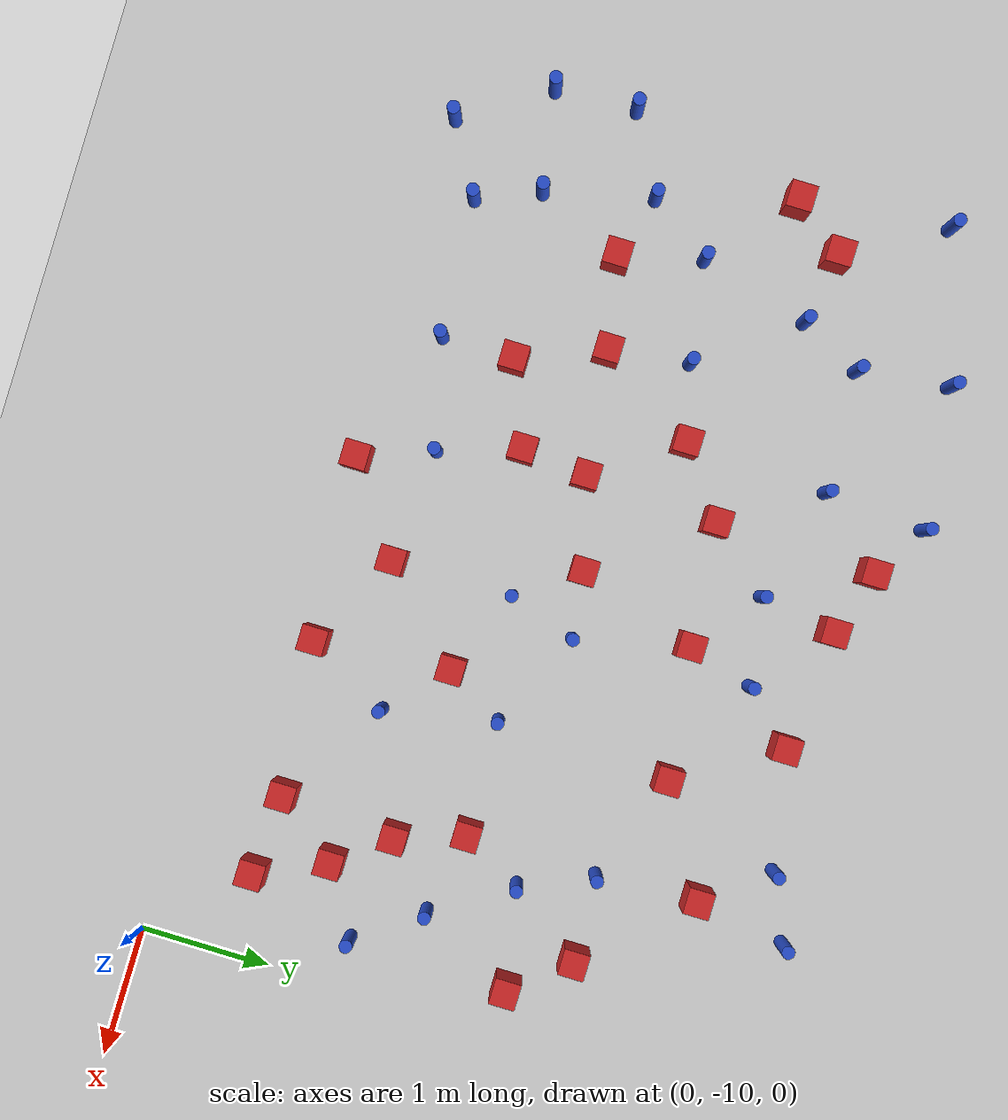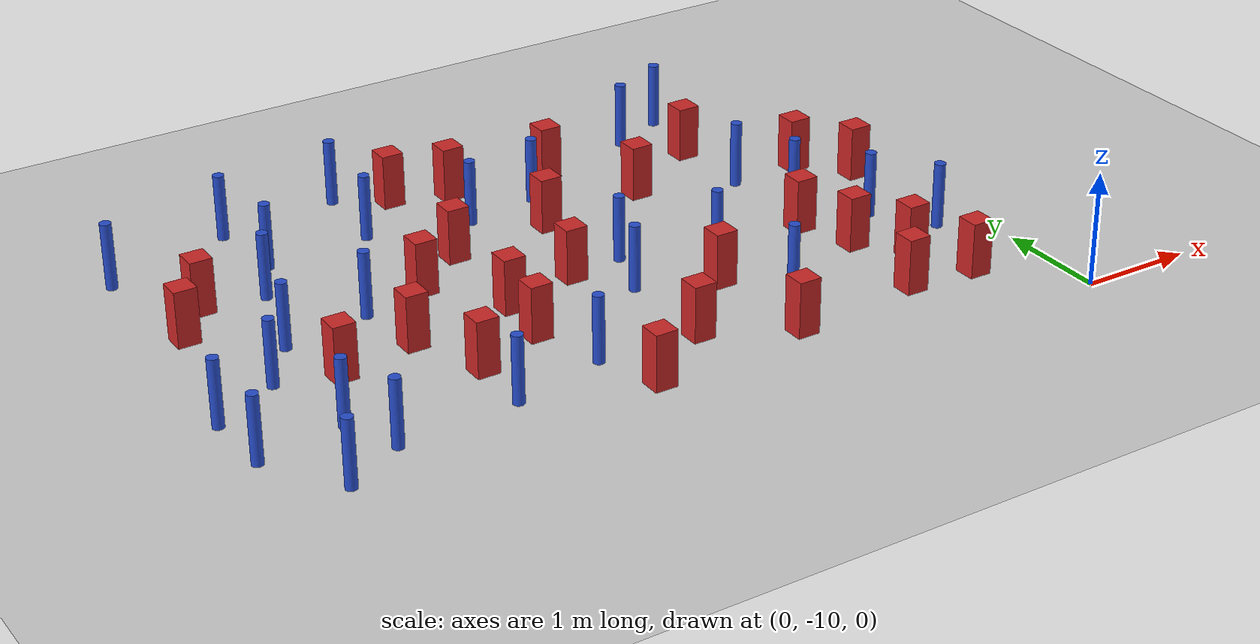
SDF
<sdf version="1.6">
 <world name="default">
  <model name="ground_plane">
   <static>1</static>
   <link name="link">
    <collision name="collision">
     <geometry><plane><normal>0 0 1</normal><size>100 100</size></plane></geometry>
     <surface><friction><ode><mu>100</mu><mu2>50</mu2></ode></friction></surface>
    </collision>
    <visual name="visual">
     <cast_shadows>0</cast_shadows>
     <geometry><plane><normal>0 0 1</normal><size>100 100</size></plane></geometry>
     <material>
      <ambient>1.0 1.0 1.0 1.0</ambient>
      <diffuse>0.8 0.8 0.8 1.0</diffuse>
      <specular>0.01 0.01 0.01 1.000000</specular>
     </material>
    </visual>
   </link>
  </model>
  <model name="square_post_obstacle3">
   <static>true</static>
   <pose>-4.2993784484 -8.27690357602 -6.11067671241e-07 -5.50515727128e-06 -8.79689657224e-07 2.37013304536e-05</pose>
   <link name="link">
    <pose>0 0 0.25 0 -0 0</pose>
    <inertial>
     <mass>100</mass>
     <inertia>
      <ixx>0.166667</ixx>
      <ixy>0</ixy>
      <ixz>0</ixz>
      <iyy>0.166667</iyy>
      <iyz>0</iyz>
      <izz>0.166667</izz>
     </inertia>
    </inertial>
    <collision name="collision"><geometry><box><size>.2 .2 .5</size></box></geometry></collision>
    <visual name="visual">
     <geometry><box><size>.2 .2 .5</size></box></geometry>
     <material>
      <script><name>Gazebo/Red</name><uri>file://media/materials/scripts/gazebo.material</uri></script>
     </material>
    </visual>
   </link>
  </model>
  <model name="square_post_obstacle7">
   <static>true</static>
   <pose>-3.24468510461 -6.64696252603 -6.11067671241e-07 -5.50515727128e-06 -8.79689657224e-07 2.37013304536e-05</pose>
   <link name="link">
    <pose>0 0 0.25 0 -0 0</pose>
    <inertial>
     <mass>100</mass>
     <inertia>
      <ixx>0.166667</ixx>
      <ixy>0</ixy>
      <ixz>0</ixz>
      <iyy>0.166667</iyy>
      <iyz>0</iyz>
      <izz>0.166667</izz>
     </inertia>
    </inertial>
    <collision name="collision"><geometry><box><size>.2 .2 .5</size></box></geometry></collision>
    <visual name="visual">
     <geometry><box><size>.2 .2 .5</size></box></geometry>
     <material>
      <script><name>Gazebo/Red</name><uri>file://media/materials/scripts/gazebo.material</uri></script>
     </material>
    </visual>
   </link>
  </model>
  <model name="square_post_obstacle13">
   <static>true</static>
   <pose>-1.29914973282 -9.2488651199 -6.11067671241e-07 -5.50515727128e-06 -8.79689657224e-07 2.37013304536e-05</pose>
   <link name="link">
    <pose>0 0 0.25 0 -0 0</pose>
    <inertial>
     <mass>100</mass>
     <inertia>
      <ixx>0.166667</ixx>
      <ixy>0</ixy>
      <ixz>0</ixz>
      <iyy>0.166667</iyy>
      <iyz>0</iyz>
      <izz>0.166667</izz>
     </inertia>
    </inertial>
    <collision name="collision"><geometry><box><size>.2 .2 .5</size></box></geometry></collision>
    <visual name="visual">
     <geometry><box><size>.2 .2 .5</size></box></geometry>
     <material>
      <script><name>Gazebo/Red</name><uri>file://media/materials/scripts/gazebo.material</uri></script>
     </material>
    </visual>
   </link>
  </model>
  <model name="square_post_obstacle16">
   <static>true</static>
   <pose>-5.19287735996 -7.88013842331 -6.11067671241e-07 -5.50515727128e-06 -8.79689657224e-07 2.37013304536e-05</pose>
   <link name="link">
    <pose>0 0 0.25 0 -0 0</pose>
    <inertial>
     <mass>100</mass>
     <inertia>
      <ixx>0.166667</ixx>
      <ixy>0</ixy>
      <ixz>0</ixz>
      <iyy>0.166667</iyy>
      <iyz>0</iyz>
      <izz>0.166667</izz>
     </inertia>
    </inertial>
    <collision name="collision"><geometry><box><size>.2 .2 .5</size></box></geometry></collision>
    <visual name="visual">
     <geometry><box><size>.2 .2 .5</size></box></geometry>
     <material>
      <script><name>Gazebo/Red</name><uri>file://media/materials/scripts/gazebo.material</uri></script>
     </material>
    </visual>
   </link>
  </model>
  <model name="square_post_obstacle18">
   <static>true</static>
   <pose>-6.67809848744 -6.83257664463 -6.11067671241e-07 -5.50515727128e-06 -8.79689657224e-07 2.37013304536e-05</pose>
   <link name="link">
    <pose>0 0 0.25 0 -0 0</pose>
    <inertial>
     <mass>100</mass>
     <inertia>
      <ixx>0.166667</ixx>
      <ixy>0</ixy>
      <ixz>0</ixz>
      <iyy>0.166667</iyy>
      <iyz>0</iyz>
      <izz>0.166667</izz>
     </inertia>
    </inertial>
    <collision name="collision"><geometry><box><size>.2 .2 .5</size></box></geometry></collision>
    <visual name="visual">
     <geometry><box><size>.2 .2 .5</size></box></geometry>
     <material>
      <script><name>Gazebo/Red</name><uri>file://media/materials/scripts/gazebo.material</uri></script>
     </material>
    </visual>
   </link>
  </model>
  <model name="square_post_obstacle22">
   <static>true</static>
   <pose>-2.71512669858 -5.74736953656 -6.11067671241e-07 -5.50515727128e-06 -8.79689657224e-07 2.37013304536e-05</pose>
   <link name="link">
    <pose>0 0 0.25 0 -0 0</pose>
    <inertial>
     <mass>100</mass>
     <inertia>
      <ixx>0.166667</ixx>
      <ixy>0</ixy>
      <ixz>0</ixz>
      <iyy>0.166667</iyy>
      <iyz>0</iyz>
      <izz>0.166667</izz>
     </inertia>
    </inertial>
    <collision name="collision"><geometry><box><size>.2 .2 .5</size></box></geometry></collision>
    <visual name="visual">
     <geometry><box><size>.2 .2 .5</size></box></geometry>
     <material>
      <script><name>Gazebo/Red</name><uri>file://media/materials/scripts/gazebo.material</uri></script>
     </material>
    </visual>
   </link>
  </model>
  <model name="square_post_obstacle32">
   <static>true</static>
   <pose>-0.92152964072 -8.76448828151 -6.11067671241e-07 -5.50515727128e-06 -8.79689657224e-07 2.37013304536e-05</pose>
   <link name="link">
    <pose>0 0 0.25 0 -0 0</pose>
    <inertial>
     <mass>100</mass>
     <inertia>
      <ixx>0.166667</ixx>
      <ixy>0</ixy>
      <ixz>0</ixz>
      <iyy>0.166667</iyy>
      <iyz>0</iyz>
      <izz>0.166667</izz>
     </inertia>
    </inertial>
    <collision name="collision"><geometry><box><size>.2 .2 .5</size></box></geometry></collision>
    <visual name="visual">
     <geometry><box><size>.2 .2 .5</size></box></geometry>
     <material>
      <script><name>Gazebo/Red</name><uri>file://media/materials/scripts/gazebo.material</uri></script>
     </material>
    </visual>
   </link>
  </model>
  <model name="square_post_obstacle34">
   <static>true</static>
   <pose>-4.92881140648 -8.53332998616 -6.11067671241e-07 -5.50515727128e-06 -8.79689657224e-07 2.37013304536e-05</pose>
   <link name="link">
    <pose>0 0 0.25 0 -0 0</pose>
    <inertial>
     <mass>100</mass>
     <inertia>
      <ixx>0.166667</ixx>
      <ixy>0</ixy>
      <ixz>0</ixz>
      <iyy>0.166667</iyy>
      <iyz>0</iyz>
      <izz>0.166667</izz>
     </inertia>
    </inertial>
    <collision name="collision"><geometry><box><size>.2 .2 .5</size></box></geometry></collision>
    <visual name="visual">
     <geometry><box><size>.2 .2 .5</size></box></geometry>
     <material>
      <script><name>Gazebo/Red</name><uri>file://media/materials/scripts/gazebo.material</uri></script>
     </material>
    </visual>
   </link>
  </model>
  <model name="square_post_obstacle51">
   <static>true</static>
   <pose>-4.19252146235 -6.72760498973 -6.11067671241e-07 -5.50515727128e-06 -8.79689657224e-07 2.37013304536e-05</pose>
   <link name="link">
    <pose>0 0 0.25 0 -0 0</pose>
    <inertial>
     <mass>100</mass>
     <inertia>
      <ixx>0.166667</ixx>
      <ixy>0</ixy>
      <ixz>0</ixz>
      <iyy>0.166667</iyy>
      <iyz>0</iyz>
      <izz>0.166667</izz>
     </inertia>
    </inertial>
    <collision name="collision"><geometry><box><size>.2 .2 .5</size></box></geometry></collision>
    <visual name="visual">
     <geometry><box><size>.2 .2 .5</size></box></geometry>
     <material>
      <script><name>Gazebo/Red</name><uri>file://media/materials/scripts/gazebo.material</uri></script>
     </material>
    </visual>
   </link>
  </model>
  <model name="square_post_obstacle53">
   <static>true</static>
   <pose>-3.21638851513 -8.97245397191 -6.11067671241e-07 -5.50515727128e-06 -8.79689657224e-07 2.37013304536e-05</pose>
   <link name="link">
    <pose>0 0 0.25 0 -0 0</pose>
    <inertial>
     <mass>100</mass>
     <inertia>
      <ixx>0.166667</ixx>
      <ixy>0</ixy>
      <ixz>0</ixz>
      <iyy>0.166667</iyy>
      <iyz>0</iyz>
      <izz>0.166667</izz>
     </inertia>
    </inertial>
    <collision name="collision"><geometry><box><size>.2 .2 .5</size></box></geometry></collision>
    <visual name="visual">
     <geometry><box><size>.2 .2 .5</size></box></geometry>
     <material>
      <script><name>Gazebo/Red</name><uri>file://media/materials/scripts/gazebo.material</uri></script>
     </material>
    </visual>
   </link>
  </model>
  <model name="square_post_obstacle70">
   <static>true</static>
   <pose>-3.55244868384 -7.57537905655 -6.11067671241e-07 -5.50515727128e-06 -8.79689657224e-07 2.37013304536e-05</pose>
   <link name="link">
    <pose>0 0 0.25 0 -0 0</pose>
    <inertial>
     <mass>100</mass>
     <inertia>
      <ixx>0.166667</ixx>
      <ixy>0</ixy>
      <ixz>0</ixz>
      <iyy>0.166667</iyy>
      <iyz>0</iyz>
      <izz>0.166667</izz>
     </inertia>
    </inertial>
    <collision name="collision"><geometry><box><size>.2 .2 .5</size></box></geometry></collision>
    <visual name="visual">
     <geometry><box><size>.2 .2 .5</size></box></geometry>
     <material>
      <script><name>Gazebo/Red</name><uri>file://media/materials/scripts/gazebo.material</uri></script>
     </material>
    </visual>
   </link>
  </model>
  <model name="square_post_obstacle71">
   <static>true</static>
   <pose>-0.382492057168 -7.23300606079 -6.11067671241e-07 -5.50515727128e-06 -8.79689657224e-07 2.37013304536e-05</pose>
   <link name="link">
    <pose>0 0 0.25 0 -0 0</pose>
    <inertial>
     <mass>100</mass>
     <inertia>
      <ixx>0.166667</ixx>
      <ixy>0</ixy>
      <ixz>0</ixz>
      <iyy>0.166667</iyy>
      <iyz>0</iyz>
      <izz>0.166667</izz>
     </inertia>
    </inertial>
    <collision name="collision"><geometry><box><size>.2 .2 .5</size></box></geometry></collision>
    <visual name="visual">
     <geometry><box><size>.2 .2 .5</size></box></geometry>
     <material>
      <script><name>Gazebo/Red</name><uri>file://media/materials/scripts/gazebo.material</uri></script>
     </material>
    </visual>
   </link>
  </model>
  <model name="pole_obstacle78">
   <static>true</static>
   <pose>-4.64784451784 -5.99882765532 -9.47619616065e-06 5.49618799737e-07 2.36310414037e-07 -1.55090534814e-07</pose>
   <link name="link">
    <pose>0 0 0.3 0 -0 0</pose>
    <inertial>
     <mass>1</mass>
     <inertia><ixx>0.145833</ixx><ixy>0</ixy><ixz>0</ixz><iyy>0.145833</iyy><iyz>0</iyz><izz>0.125</izz></inertia>
    </inertial>
    <collision name="collision">
     <geometry><cylinder><radius>0.05</radius><length>.6</length></cylinder></geometry>
    </collision>
    <visual name="visual">
     <geometry><cylinder><radius>0.05</radius><length>.6</length></cylinder></geometry>
     <material>
      <script><name>Gazebo/Blue</name><uri>file://media/materials/scripts/gazebo.material</uri></script>
     </material>
    </visual>
   </link>
  </model>
  <model name="pole_obstacle81">
   <static>true</static>
   <pose>-5.5900091237 -6.04336140854 -9.47619616065e-06 5.49618799737e-07 2.36310414037e-07 -1.55090534814e-07</pose>
   <link name="link">
    <pose>0 0 0.3 0 -0 0</pose>
    <inertial>
     <mass>1</mass>
     <inertia><ixx>0.145833</ixx><ixy>0</ixy><ixz>0</ixz><iyy>0.145833</iyy><iyz>0</iyz><izz>0.125</izz></inertia>
    </inertial>
    <collision name="collision">
     <geometry><cylinder><radius>0.05</radius><length>.6</length></cylinder></geometry>
    </collision>
    <visual name="visual">
     <geometry><cylinder><radius>0.05</radius><length>.6</length></cylinder></geometry>
     <material>
      <script><name>Gazebo/Blue</name><uri>file://media/materials/scripts/gazebo.material</uri></script>
     </material>
    </visual>
   </link>
  </model>
  <model name="pole_obstacle82">
   <static>true</static>
   <pose>-1.29523409269 -5.32720710379 -9.47619616065e-06 5.49618799737e-07 2.36310414061e-07 -1.550905348e-07</pose>
   <link name="link">
    <pose>0 0 0.3 0 -0 0</pose>
    <inertial>
     <mass>1</mass>
     <inertia><ixx>0.145833</ixx><ixy>0</ixy><ixz>0</ixz><iyy>0.145833</iyy><iyz>0</iyz><izz>0.125</izz></inertia>
    </inertial>
    <collision name="collision">
     <geometry><cylinder><radius>0.05</radius><length>.6</length></cylinder></geometry>
    </collision>
    <visual name="visual">
     <geometry><cylinder><radius>0.05</radius><length>.6</length></cylinder></geometry>
     <material>
      <script><name>Gazebo/Blue</name><uri>file://media/materials/scripts/gazebo.material</uri></script>
     </material>
    </visual>
   </link>
  </model>
  <model name="pole_obstacle87">
   <static>true</static>
   <pose>-6.0041068805 -9.17380853155 -9.47619616065e-06 5.49618799737e-07 2.36310414065e-07 -1.55090534796e-07</pose>
   <link name="link">
    <pose>0 0 0.3 0 -0 0</pose>
    <inertial>
     <mass>1</mass>
     <inertia><ixx>0.145833</ixx><ixy>0</ixy><ixz>0</ixz><iyy>0.145833</iyy><iyz>0</iyz><izz>0.125</izz></inertia>
    </inertial>
    <collision name="collision">
     <geometry><cylinder><radius>0.05</radius><length>.6</length></cylinder></geometry>
    </collision>
    <visual name="visual">
     <geometry><cylinder><radius>0.05</radius><length>.6</length></cylinder></geometry>
     <material>
      <script><name>Gazebo/Blue</name><uri>file://media/materials/scripts/gazebo.material</uri></script>
     </material>
    </visual>
   </link>
  </model>
  <model name="pole_obstacle88">
   <static>true</static>
   <pose>-1.38753026893 -6.82623184095 -9.47619616065e-06 5.49618799737e-07 2.36310414061e-07 -1.550905348e-07</pose>
   <link name="link">
    <pose>0 0 0.3 0 -0 0</pose>
    <inertial>
     <mass>1</mass>
     <inertia><ixx>0.145833</ixx><ixy>0</ixy><ixz>0</ixz><iyy>0.145833</iyy><iyz>0</iyz><izz>0.125</izz></inertia>
    </inertial>
    <collision name="collision">
     <geometry><cylinder><radius>0.05</radius><length>.6</length></cylinder></geometry>
    </collision>
    <visual name="visual">
     <geometry><cylinder><radius>0.05</radius><length>.6</length></cylinder></geometry>
     <material>
      <script><name>Gazebo/Blue</name><uri>file://media/materials/scripts/gazebo.material</uri></script>
     </material>
    </visual>
   </link>
  </model>
  <model name="pole_obstacle101">
   <static>true</static>
   <pose>-6.06275814442 -7.37806334808 -9.47619616065e-06 5.49618799737e-07 2.36310414037e-07 -1.55090534814e-07</pose>
   <link name="link">
    <pose>0 0 0.3 0 -0 0</pose>
    <inertial>
     <mass>1</mass>
     <inertia><ixx>0.145833</ixx><ixy>0</ixy><ixz>0</ixz><iyy>0.145833</iyy><iyz>0</iyz><izz>0.125</izz></inertia>
    </inertial>
    <collision name="collision">
     <geometry><cylinder><radius>0.05</radius><length>.6</length></cylinder></geometry>
    </collision>
    <visual name="visual">
     <geometry><cylinder><radius>0.05</radius><length>.6</length></cylinder></geometry>
     <material>
      <script><name>Gazebo/Blue</name><uri>file://media/materials/scripts/gazebo.material</uri></script>
     </material>
    </visual>
   </link>
  </model>
  <model name="square_post_obstacle93">
   <static>true</static>
   <pose>-2.5617805429 -8.31309584344 -6.11067671241e-07 -5.50515727128e-06 -8.79689657224e-07 2.37013304536e-05</pose>
   <link name="link">
    <pose>0 0 0.25 0 -0 0</pose>
    <inertial>
     <mass>100</mass>
     <inertia>
      <ixx>0.166667</ixx>
      <ixy>0</ixy>
      <ixz>0</ixz>
      <iyy>0.166667</iyy>
      <iyz>0</iyz>
      <izz>0.166667</izz>
     </inertia>
    </inertial>
    <collision name="collision"><geometry><box><size>.2 .2 .5</size></box></geometry></collision>
    <visual name="visual">
     <geometry><box><size>.2 .2 .5</size></box></geometry>
     <material>
      <script><name>Gazebo/Red</name><uri>file://media/materials/scripts/gazebo.material</uri></script>
     </material>
    </visual>
   </link>
  </model>
  <model name="square_post_obstacle95">
   <static>true</static>
   <pose>-1.41316962822 -7.84274470521 -6.11067671241e-07 -5.50515727128e-06 -8.79689657224e-07 2.37013304536e-05</pose>
   <link name="link">
    <pose>0 0 0.25 0 -0 0</pose>
    <inertial>
     <mass>100</mass>
     <inertia>
      <ixx>0.166667</ixx>
      <ixy>0</ixy>
      <ixz>0</ixz>
      <iyy>0.166667</iyy>
      <iyz>0</iyz>
      <izz>0.166667</izz>
     </inertia>
    </inertial>
    <collision name="collision"><geometry><box><size>.2 .2 .5</size></box></geometry></collision>
    <visual name="visual">
     <geometry><box><size>.2 .2 .5</size></box></geometry>
     <material>
      <script><name>Gazebo/Red</name><uri>file://media/materials/scripts/gazebo.material</uri></script>
     </material>
    </visual>
   </link>
  </model>
  <model name="square_post_obstacle97">
   <static>true</static>
   <pose>-1.43846110884 -6.04882433006 -6.11067671241e-07 -5.50515727128e-06 -8.79689657224e-07 2.37013304536e-05</pose>
   <link name="link">
    <pose>0 0 0.25 0 -0 0</pose>
    <inertial>
     <mass>100</mass>
     <inertia>
      <ixx>0.166667</ixx>
      <ixy>0</ixy>
      <ixz>0</ixz>
      <iyy>0.166667</iyy>
      <iyz>0</iyz>
      <izz>0.166667</izz>
     </inertia>
    </inertial>
    <collision name="collision"><geometry><box><size>.2 .2 .5</size></box></geometry></collision>
    <visual name="visual">
     <geometry><box><size>.2 .2 .5</size></box></geometry>
     <material>
      <script><name>Gazebo/Red</name><uri>file://media/materials/scripts/gazebo.material</uri></script>
     </material>
    </visual>
   </link>
  </model>
  <model name="pole_obstacle138">
   <static>true</static>
   <pose>-2.29040257265 -7.86482057623 -9.47619616065e-06 5.49618799738e-07 2.3631041406e-07 -1.55090534801e-07</pose>
   <link name="link">
    <pose>0 0 0.3 0 -0 0</pose>
    <inertial>
     <mass>1</mass>
     <inertia><ixx>0.145833</ixx><ixy>0</ixy><ixz>0</ixz><iyy>0.145833</iyy><iyz>0</iyz><izz>0.125</izz></inertia>
    </inertial>
    <collision name="collision">
     <geometry><cylinder><radius>0.05</radius><length>.6</length></cylinder></geometry>
    </collision>
    <visual name="visual">
     <geometry><cylinder><radius>0.05</radius><length>.6</length></cylinder></geometry>
     <material>
      <script><name>Gazebo/Blue</name><uri>file://media/materials/scripts/gazebo.material</uri></script>
     </material>
    </visual>
   </link>
  </model>
  <model name="square_post_obstacle119">
   <static>true</static>
   <pose>-4.24764135924 -7.76460627771 -6.11067671241e-07 -5.50515727128e-06 -8.79689657224e-07 2.37013304536e-05</pose>
   <link name="link">
    <pose>0 0 0.25 0 -0 0</pose>
    <inertial>
     <mass>100</mass>
     <inertia>
      <ixx>0.166667</ixx>
      <ixy>0</ixy>
      <ixz>0</ixz>
      <iyy>0.166667</iyy>
      <iyz>0</iyz>
      <izz>0.166667</izz>
     </inertia>
    </inertial>
    <collision name="collision"><geometry><box><size>.2 .2 .5</size></box></geometry></collision>
    <visual name="visual">
     <geometry><box><size>.2 .2 .5</size></box></geometry>
     <material>
      <script><name>Gazebo/Red</name><uri>file://media/materials/scripts/gazebo.material</uri></script>
     </material>
    </visual>
   </link>
  </model>
  <model name="square_post_obstacle125">
   <static>true</static>
   <pose>-3.65321984455 -5.65207707395 -6.11067671241e-07 -5.50515727128e-06 -8.79689657224e-07 2.37013304536e-05</pose>
   <link name="link">
    <pose>0 0 0.25 0 -0 0</pose>
    <inertial>
     <mass>100</mass>
     <inertia>
      <ixx>0.166667</ixx>
      <ixy>0</ixy>
      <ixz>0</ixz>
      <iyy>0.166667</iyy>
      <iyz>0</iyz>
      <izz>0.166667</izz>
     </inertia>
    </inertial>
    <collision name="collision"><geometry><box><size>.2 .2 .5</size></box></geometry></collision>
    <visual name="visual">
     <geometry><box><size>.2 .2 .5</size></box></geometry>
     <material>
      <script><name>Gazebo/Red</name><uri>file://media/materials/scripts/gazebo.material</uri></script>
     </material>
    </visual>
   </link>
  </model>
  <model name="square_post_obstacle126">
   <static>true</static>
   <pose>-2.24075876193 -6.51996628651 -6.11067671241e-07 -5.50515727128e-06 -8.79689657224e-07 2.37013304536e-05</pose>
   <link name="link">
    <pose>0 0 0.25 0 -0 0</pose>
    <inertial>
     <mass>100</mass>
     <inertia>
      <ixx>0.166667</ixx>
      <ixy>0</ixy>
      <ixz>0</ixz>
      <iyy>0.166667</iyy>
      <iyz>0</iyz>
      <izz>0.166667</izz>
     </inertia>
    </inertial>
    <collision name="collision"><geometry><box><size>.2 .2 .5</size></box></geometry></collision>
    <visual name="visual">
     <geometry><box><size>.2 .2 .5</size></box></geometry>
     <material>
      <script><name>Gazebo/Red</name><uri>file://media/materials/scripts/gazebo.material</uri></script>
     </material>
    </visual>
   </link>
  </model>
  <model name="pole_obstacle145">
   <static>true</static>
   <pose>-6.97160524432 -8.8252260519 -9.47619616065e-06 5.49618799737e-07 2.36310414065e-07 -1.55090534796e-07</pose>
   <link name="link">
    <pose>0 0 0.3 0 -0 0</pose>
    <inertial>
     <mass>1</mass>
     <inertia><ixx>0.145833</ixx><ixy>0</ixy><ixz>0</ixz><iyy>0.145833</iyy><iyz>0</iyz><izz>0.125</izz></inertia>
    </inertial>
    <collision name="collision">
     <geometry><cylinder><radius>0.05</radius><length>.6</length></cylinder></geometry>
    </collision>
    <visual name="visual">
     <geometry><cylinder><radius>0.05</radius><length>.6</length></cylinder></geometry>
     <material>
      <script><name>Gazebo/Blue</name><uri>file://media/materials/scripts/gazebo.material</uri></script>
     </material>
    </visual>
   </link>
  </model>
  <model name="pole_obstacle146">
   <static>true</static>
   <pose>-6.54401564375 -9.4851067022 -9.47619616065e-06 5.49618799737e-07 2.36310414065e-07 -1.55090534796e-07</pose>
   <link name="link">
    <pose>0 0 0.3 0 -0 0</pose>
    <inertial>
     <mass>1</mass>
     <inertia><ixx>0.145833</ixx><ixy>0</ixy><ixz>0</ixz><iyy>0.145833</iyy><iyz>0</iyz><izz>0.125</izz></inertia>
    </inertial>
    <collision name="collision">
     <geometry><cylinder><radius>0.05</radius><length>.6</length></cylinder></geometry>
    </collision>
    <visual name="visual">
     <geometry><cylinder><radius>0.05</radius><length>.6</length></cylinder></geometry>
     <material>
      <script><name>Gazebo/Blue</name><uri>file://media/materials/scripts/gazebo.material</uri></script>
     </material>
    </visual>
   </link>
  </model>
  <model name="pole_obstacle148">
   <static>true</static>
   <pose>-0.762016217732 -7.96892969851 -9.47619616065e-06 5.49618799737e-07 2.36310414051e-07 -1.55090534805e-07</pose>
   <link name="link">
    <pose>0 0 0.3 0 -0 0</pose>
    <inertial>
     <mass>1</mass>
     <inertia><ixx>0.145833</ixx><ixy>0</ixy><ixz>0</ixz><iyy>0.145833</iyy><iyz>0</iyz><izz>0.125</izz></inertia>
    </inertial>
    <collision name="collision">
     <geometry><cylinder><radius>0.05</radius><length>.6</length></cylinder></geometry>
    </collision>
    <visual name="visual">
     <geometry><cylinder><radius>0.05</radius><length>.6</length></cylinder></geometry>
     <material>
      <script><name>Gazebo/Blue</name><uri>file://media/materials/scripts/gazebo.material</uri></script>
     </material>
    </visual>
   </link>
  </model>
  <model name="pole_obstacle154">
   <static>true</static>
   <pose>-6.20287372401 -8.69264917543 -9.47619616065e-06 5.49618799737e-07 2.36310414065e-07 -1.55090534796e-07</pose>
   <link name="link">
    <pose>0 0 0.3 0 -0 0</pose>
    <inertial>
     <mass>1</mass>
     <inertia><ixx>0.145833</ixx><ixy>0</ixy><ixz>0</ixz><iyy>0.145833</iyy><iyz>0</iyz><izz>0.125</izz></inertia>
    </inertial>
    <collision name="collision">
     <geometry><cylinder><radius>0.05</radius><length>.6</length></cylinder></geometry>
    </collision>
    <visual name="visual">
     <geometry><cylinder><radius>0.05</radius><length>.6</length></cylinder></geometry>
     <material>
      <script><name>Gazebo/Blue</name><uri>file://media/materials/scripts/gazebo.material</uri></script>
     </material>
    </visual>
   </link>
  </model>
  <model name="square_post_obstacle147">
   <static>true</static>
   <pose>-1.23361130519 -8.36236702801 -6.11067671241e-07 -5.50515727128e-06 -8.79689657224e-07 2.37013304536e-05</pose>
   <link name="link">
    <pose>0 0 0.25 0 -0 0</pose>
    <inertial>
     <mass>100</mass>
     <inertia>
      <ixx>0.166667</ixx>
      <ixy>0</ixy>
      <ixz>0</ixz>
      <iyy>0.166667</iyy>
      <iyz>0</iyz>
      <izz>0.166667</izz>
     </inertia>
    </inertial>
    <collision name="collision"><geometry><box><size>.2 .2 .5</size></box></geometry></collision>
    <visual name="visual">
     <geometry><box><size>.2 .2 .5</size></box></geometry>
     <material>
      <script><name>Gazebo/Red</name><uri>file://media/materials/scripts/gazebo.material</uri></script>
     </material>
    </visual>
   </link>
  </model>
  <model name="square_post_obstacle149">
   <static>true</static>
   <pose>-2.47998786743 -9.35790751502 -6.11067671241e-07 -5.50515727128e-06 -8.79689657224e-07 2.37013304536e-05</pose>
   <link name="link">
    <pose>0 0 0.25 0 -0 0</pose>
    <inertial>
     <mass>100</mass>
     <inertia>
      <ixx>0.166667</ixx>
      <ixy>0</ixy>
      <ixz>0</ixz>
      <iyy>0.166667</iyy>
      <iyz>0</iyz>
      <izz>0.166667</izz>
     </inertia>
    </inertial>
    <collision name="collision"><geometry><box><size>.2 .2 .5</size></box></geometry></collision>
    <visual name="visual">
     <geometry><box><size>.2 .2 .5</size></box></geometry>
     <material>
      <script><name>Gazebo/Red</name><uri>file://media/materials/scripts/gazebo.material</uri></script>
     </material>
    </visual>
   </link>
  </model>
  <model name="pole_obstacle157">
   <static>true</static>
   <pose>-5.68050049857 -5.33184604939 -9.47619616065e-06 5.49618799737e-07 2.36310414037e-07 -1.55090534814e-07</pose>
   <link name="link">
    <pose>0 0 0.3 0 -0 0</pose>
    <inertial>
     <mass>1</mass>
     <inertia><ixx>0.145833</ixx><ixy>0</ixy><ixz>0</ixz><iyy>0.145833</iyy><iyz>0</iyz><izz>0.125</izz></inertia>
    </inertial>
    <collision name="collision">
     <geometry><cylinder><radius>0.05</radius><length>.6</length></cylinder></geometry>
    </collision>
    <visual name="visual">
     <geometry><cylinder><radius>0.05</radius><length>.6</length></cylinder></geometry>
     <material>
      <script><name>Gazebo/Blue</name><uri>file://media/materials/scripts/gazebo.material</uri></script>
     </material>
    </visual>
   </link>
  </model>
  <model name="pole_obstacle174">
   <static>true</static>
   <pose>-1.14578655558 -7.37507812843 -9.47619616065e-06 5.49618799737e-07 2.36310414061e-07 -1.550905348e-07</pose>
   <link name="link">
    <pose>0 0 0.3 0 -0 0</pose>
    <inertial>
     <mass>1</mass>
     <inertia><ixx>0.145833</ixx><ixy>0</ixy><ixz>0</ixz><iyy>0.145833</iyy><iyz>0</iyz><izz>0.125</izz></inertia>
    </inertial>
    <collision name="collision">
     <geometry><cylinder><radius>0.05</radius><length>.6</length></cylinder></geometry>
    </collision>
    <visual name="visual">
     <geometry><cylinder><radius>0.05</radius><length>.6</length></cylinder></geometry>
     <material>
      <script><name>Gazebo/Blue</name><uri>file://media/materials/scripts/gazebo.material</uri></script>
     </material>
    </visual>
   </link>
  </model>
  <model name="pole_obstacle176">
   <static>true</static>
   <pose>-4.10031177962 -8.89849861391 -9.47619616065e-06 5.49618799737e-07 2.36310414065e-07 -1.55090534796e-07</pose>
   <link name="link">
    <pose>0 0 0.3 0 -0 0</pose>
    <inertial>
     <mass>1</mass>
     <inertia><ixx>0.145833</ixx><ixy>0</ixy><ixz>0</ixz><iyy>0.145833</iyy><iyz>0</iyz><izz>0.125</izz></inertia>
    </inertial>
    <collision name="collision">
     <geometry><cylinder><radius>0.05</radius><length>.6</length></cylinder></geometry>
    </collision>
    <visual name="visual">
     <geometry><cylinder><radius>0.05</radius><length>.6</length></cylinder></geometry>
     <material>
      <script><name>Gazebo/Blue</name><uri>file://media/materials/scripts/gazebo.material</uri></script>
     </material>
    </visual>
   </link>
  </model>
  <model name="pole_obstacle178">
   <static>true</static>
   <pose>-3.08410705249 -6.1253499876 -9.47619616065e-06 5.49618799738e-07 2.3631041406e-07 -1.55090534801e-07</pose>
   <link name="link">
    <pose>0 0 0.3 0 -0 0</pose>
    <inertial>
     <mass>1</mass>
     <inertia><ixx>0.145833</ixx><ixy>0</ixy><ixz>0</ixz><iyy>0.145833</iyy><iyz>0</iyz><izz>0.125</izz></inertia>
    </inertial>
    <collision name="collision">
     <geometry><cylinder><radius>0.05</radius><length>.6</length></cylinder></geometry>
    </collision>
    <visual name="visual">
     <geometry><cylinder><radius>0.05</radius><length>.6</length></cylinder></geometry>
     <material>
      <script><name>Gazebo/Blue</name><uri>file://media/materials/scripts/gazebo.material</uri></script>
     </material>
    </visual>
   </link>
  </model>
  <model name="pole_obstacle185">
   <static>true</static>
   <pose>-2.12020150941 -8.73091190655 -9.4761961606e-06 5.49618799729e-07 2.36310414e-07 -1.55090534824e-07</pose>
   <link name="link">
    <pose>0 0 0.3 0 -0 0</pose>
    <inertial>
     <mass>1</mass>
     <inertia><ixx>0.145833</ixx><ixy>0</ixy><ixz>0</ixz><iyy>0.145833</iyy><iyz>0</iyz><izz>0.125</izz></inertia>
    </inertial>
    <collision name="collision">
     <geometry><cylinder><radius>0.05</radius><length>.6</length></cylinder></geometry>
    </collision>
    <visual name="visual">
     <geometry><cylinder><radius>0.05</radius><length>.6</length></cylinder></geometry>
     <material>
      <script><name>Gazebo/Blue</name><uri>file://media/materials/scripts/gazebo.material</uri></script>
     </material>
    </visual>
   </link>
  </model>
  <model name="square_post_obstacle177">
   <static>true</static>
   <pose>-5.88804504337 -8.01656984632 -6.11067671241e-07 -5.50515727128e-06 -8.79689657224e-07 2.37013304536e-05</pose>
   <link name="link">
    <pose>0 0 0.25 0 -0 0</pose>
    <inertial>
     <mass>100</mass>
     <inertia>
      <ixx>0.166667</ixx>
      <ixy>0</ixy>
      <ixz>0</ixz>
      <iyy>0.166667</iyy>
      <iyz>0</iyz>
      <izz>0.166667</izz>
     </inertia>
    </inertial>
    <collision name="collision"><geometry><box><size>.2 .2 .5</size></box></geometry></collision>
    <visual name="visual">
     <geometry><box><size>.2 .2 .5</size></box></geometry>
     <material>
      <script><name>Gazebo/Red</name><uri>file://media/materials/scripts/gazebo.material</uri></script>
     </material>
    </visual>
   </link>
  </model>
  <model name="square_post_obstacle180">
   <static>true</static>
   <pose>-0.678897486771 -9.2998196328 -6.11067671241e-07 -5.50515727128e-06 -8.79689657224e-07 2.37013304536e-05</pose>
   <link name="link">
    <pose>0 0 0.25 0 -0 0</pose>
    <inertial>
     <mass>100</mass>
     <inertia>
      <ixx>0.166667</ixx>
      <ixy>0</ixy>
      <ixz>0</ixz>
      <iyy>0.166667</iyy>
      <iyz>0</iyz>
      <izz>0.166667</izz>
     </inertia>
    </inertial>
    <collision name="collision"><geometry><box><size>.2 .2 .5</size></box></geometry></collision>
    <visual name="visual">
     <geometry><box><size>.2 .2 .5</size></box></geometry>
     <material>
      <script><name>Gazebo/Red</name><uri>file://media/materials/scripts/gazebo.material</uri></script>
     </material>
    </visual>
   </link>
  </model>
  <model name="square_post_obstacle183">
   <static>true</static>
   <pose>-3.88969152063 -9.45057592401 -6.11067671241e-07 -5.50515727128e-06 -8.79689657224e-07 2.37013304536e-05</pose>
   <link name="link">
    <pose>0 0 0.25 0 -0 0</pose>
    <inertial>
     <mass>100</mass>
     <inertia>
      <ixx>0.166667</ixx>
      <ixy>0</ixy>
      <ixz>0</ixz>
      <iyy>0.166667</iyy>
      <iyz>0</iyz>
      <izz>0.166667</izz>
     </inertia>
    </inertial>
    <collision name="collision"><geometry><box><size>.2 .2 .5</size></box></geometry></collision>
    <visual name="visual">
     <geometry><box><size>.2 .2 .5</size></box></geometry>
     <material>
      <script><name>Gazebo/Red</name><uri>file://media/materials/scripts/gazebo.material</uri></script>
     </material>
    </visual>
   </link>
  </model>
  <model name="square_post_obstacle185">
   <static>true</static>
   <pose>-4.16211948027 -5.49058286092 -6.11067671241e-07 -5.50515727128e-06 -8.79689657224e-07 2.37013304536e-05</pose>
   <link name="link">
    <pose>0 0 0.25 0 -0 0</pose>
    <inertial>
     <mass>100</mass>
     <inertia>
      <ixx>0.166667</ixx>
      <ixy>0</ixy>
      <ixz>0</ixz>
      <iyy>0.166667</iyy>
      <iyz>0</iyz>
      <izz>0.166667</izz>
     </inertia>
    </inertial>
    <collision name="collision"><geometry><box><size>.2 .2 .5</size></box></geometry></collision>
    <visual name="visual">
     <geometry><box><size>.2 .2 .5</size></box></geometry>
     <material>
      <script><name>Gazebo/Red</name><uri>file://media/materials/scripts/gazebo.material</uri></script>
     </material>
    </visual>
   </link>
  </model>
  <model name="square_post_obstacle190">
   <static>true</static>
   <pose>-6.37213749282 -6.43564437638 -6.11067671241e-07 -5.50515727128e-06 -8.79689657224e-07 2.37013304536e-05</pose>
   <link name="link">
    <pose>0 0 0.25 0 -0 0</pose>
    <inertial>
     <mass>100</mass>
     <inertia>
      <ixx>0.166667</ixx>
      <ixy>0</ixy>
      <ixz>0</ixz>
      <iyy>0.166667</iyy>
      <iyz>0</iyz>
      <izz>0.166667</izz>
     </inertia>
    </inertial>
    <collision name="collision"><geometry><box><size>.2 .2 .5</size></box></geometry></collision>
    <visual name="visual">
     <geometry><box><size>.2 .2 .5</size></box></geometry>
     <material>
      <script><name>Gazebo/Red</name><uri>file://media/materials/scripts/gazebo.material</uri></script>
     </material>
    </visual>
   </link>
  </model>
  <model name="pole_obstacle198">
   <static>true</static>
   <pose>-6.99816823579 -8.19056998263 -9.47619616065e-06 5.49618799737e-07 2.36310414065e-07 -1.55090534796e-07</pose>
   <link name="link">
    <pose>0 0 0.3 0 -0 0</pose>
    <inertial>
     <mass>1</mass>
     <inertia><ixx>0.145833</ixx><ixy>0</ixy><ixz>0</ixz><iyy>0.145833</iyy><iyz>0</iyz><izz>0.125</izz></inertia>
    </inertial>
    <collision name="collision">
     <geometry><cylinder><radius>0.05</radius><length>.6</length></cylinder></geometry>
    </collision>
    <visual name="visual">
     <geometry><cylinder><radius>0.05</radius><length>.6</length></cylinder></geometry>
     <material>
      <script><name>Gazebo/Blue</name><uri>file://media/materials/scripts/gazebo.material</uri></script>
     </material>
    </visual>
   </link>
  </model>
  <model name="square_post_obstacle191">
   <static>true</static>
   <pose>-4.70278569751 -7.11437173184 -6.11067671241e-07 -5.50515727128e-06 -8.79689657224e-07 2.37013304536e-05</pose>
   <link name="link">
    <pose>0 0 0.25 0 -0 0</pose>
    <inertial>
     <mass>100</mass>
     <inertia>
      <ixx>0.166667</ixx>
      <ixy>0</ixy>
      <ixz>0</ixz>
      <iyy>0.166667</iyy>
      <iyz>0</iyz>
      <izz>0.166667</izz>
     </inertia>
    </inertial>
    <collision name="collision"><geometry><box><size>.2 .2 .5</size></box></geometry></collision>
    <visual name="visual">
     <geometry><box><size>.2 .2 .5</size></box></geometry>
     <material>
      <script><name>Gazebo/Red</name><uri>file://media/materials/scripts/gazebo.material</uri></script>
     </material>
    </visual>
   </link>
  </model>
  <model name="pole_obstacle200">
   <static>true</static>
   <pose>-3.75728510052 -6.23392380988 -9.4761961606e-06 5.49618799729e-07 2.36310414006e-07 -1.55090534822e-07</pose>
   <link name="link">
    <pose>0 0 0.3 0 -0 0</pose>
    <inertial>
     <mass>1</mass>
     <inertia><ixx>0.145833</ixx><ixy>0</ixy><ixz>0</ixz><iyy>0.145833</iyy><iyz>0</iyz><izz>0.125</izz></inertia>
    </inertial>
    <collision name="collision">
     <geometry><cylinder><radius>0.05</radius><length>.6</length></cylinder></geometry>
    </collision>
    <visual name="visual">
     <geometry><cylinder><radius>0.05</radius><length>.6</length></cylinder></geometry>
     <material>
      <script><name>Gazebo/Blue</name><uri>file://media/materials/scripts/gazebo.material</uri></script>
     </material>
    </visual>
   </link>
  </model>
  <model name="square_post_obstacle195">
   <static>true</static>
   <pose>-0.737062228354 -6.80600050659 -6.11067671241e-07 -5.50515727128e-06 -8.79689657224e-07 2.37013304536e-05</pose>
   <link name="link">
    <pose>0 0 0.25 0 -0 0</pose>
    <inertial>
     <mass>100</mass>
     <inertia>
      <ixx>0.166667</ixx>
      <ixy>0</ixy>
      <ixz>0</ixz>
      <iyy>0.166667</iyy>
      <iyz>0</iyz>
      <izz>0.166667</izz>
     </inertia>
    </inertial>
    <collision name="collision"><geometry><box><size>.2 .2 .5</size></box></geometry></collision>
    <visual name="visual">
     <geometry><box><size>.2 .2 .5</size></box></geometry>
     <material>
      <script><name>Gazebo/Red</name><uri>file://media/materials/scripts/gazebo.material</uri></script>
     </material>
    </visual>
   </link>
  </model>
  <model name="pole_obstacle201">
   <static>true</static>
   <pose>-5.28574750888 -7.25646278019 -9.47619616065e-06 5.49618799737e-07 2.36310414037e-07 -1.55090534814e-07</pose>
   <link name="link">
    <pose>0 0 0.3 0 -0 0</pose>
    <inertial>
     <mass>1</mass>
     <inertia><ixx>0.145833</ixx><ixy>0</ixy><ixz>0</ixz><iyy>0.145833</iyy><iyz>0</iyz><izz>0.125</izz></inertia>
    </inertial>
    <collision name="collision">
     <geometry><cylinder><radius>0.05</radius><length>.6</length></cylinder></geometry>
    </collision>
    <visual name="visual">
     <geometry><cylinder><radius>0.05</radius><length>.6</length></cylinder></geometry>
     <material>
      <script><name>Gazebo/Blue</name><uri>file://media/materials/scripts/gazebo.material</uri></script>
     </material>
    </visual>
   </link>
  </model>
  <model name="pole_obstacle203">
   <static>true</static>
   <pose>-6.82608866499 -5.67263011802 -9.47619616065e-06 5.49618799737e-07 2.36310414037e-07 -1.55090534814e-07</pose>
   <link name="link">
    <pose>0 0 0.3 0 -0 0</pose>
    <inertial>
     <mass>1</mass>
     <inertia><ixx>0.145833</ixx><ixy>0</ixy><ixz>0</ixz><iyy>0.145833</iyy><iyz>0</iyz><izz>0.125</izz></inertia>
    </inertial>
    <collision name="collision">
     <geometry><cylinder><radius>0.05</radius><length>.6</length></cylinder></geometry>
    </collision>
    <visual name="visual">
     <geometry><cylinder><radius>0.05</radius><length>.6</length></cylinder></geometry>
     <material>
      <script><name>Gazebo/Blue</name><uri>file://media/materials/scripts/gazebo.material</uri></script>
     </material>
    </visual>
   </link>
  </model>
  <model name="pole_obstacle206">
   <static>true</static>
   <pose>-4.58813485922 -5.21278820951 -9.47619616065e-06 5.49618799737e-07 2.36310414037e-07 -1.55090534814e-07</pose>
   <link name="link">
    <pose>0 0 0.3 0 -0 0</pose>
    <inertial>
     <mass>1</mass>
     <inertia><ixx>0.145833</ixx><ixy>0</ixy><ixz>0</ixz><iyy>0.145833</iyy><iyz>0</iyz><izz>0.125</izz></inertia>
    </inertial>
    <collision name="collision">
     <geometry><cylinder><radius>0.05</radius><length>.6</length></cylinder></geometry>
    </collision>
    <visual name="visual">
     <geometry><cylinder><radius>0.05</radius><length>.6</length></cylinder></geometry>
     <material>
      <script><name>Gazebo/Blue</name><uri>file://media/materials/scripts/gazebo.material</uri></script>
     </material>
    </visual>
   </link>
  </model>
  <model name="pole_obstacle210">
   <static>true</static>
   <pose>-3.22115393131 -8.03655960761 -9.47619616065e-06 5.49618799738e-07 2.36310414023e-07 -1.55090534823e-07</pose>
   <link name="link">
    <pose>0 0 0.3 0 -0 0</pose>
    <inertial>
     <mass>1</mass>
     <inertia><ixx>0.145833</ixx><ixy>0</ixy><ixz>0</ixz><iyy>0.145833</iyy><iyz>0</iyz><izz>0.125</izz></inertia>
    </inertial>
    <collision name="collision">
     <geometry><cylinder><radius>0.05</radius><length>.6</length></cylinder></geometry>
    </collision>
    <visual name="visual">
     <geometry><cylinder><radius>0.05</radius><length>.6</length></cylinder></geometry>
     <material>
      <script><name>Gazebo/Blue</name><uri>file://media/materials/scripts/gazebo.material</uri></script>
     </material>
    </visual>
   </link>
  </model>
  <model name="pole_obstacle216">
   <static>true</static>
   <pose>-4.94025950756 -9.10401377002 -9.47619616065e-06 5.49618799737e-07 2.36310414065e-07 -1.55090534796e-07</pose>
   <link name="link">
    <pose>0 0 0.3 0 -0 0</pose>
    <inertial>
     <mass>1</mass>
     <inertia><ixx>0.145833</ixx><ixy>0</ixy><ixz>0</ixz><iyy>0.145833</iyy><iyz>0</iyz><izz>0.125</izz></inertia>
    </inertial>
    <collision name="collision">
     <geometry><cylinder><radius>0.05</radius><length>.6</length></cylinder></geometry>
    </collision>
    <visual name="visual">
     <geometry><cylinder><radius>0.05</radius><length>.6</length></cylinder></geometry>
     <material>
      <script><name>Gazebo/Blue</name><uri>file://media/materials/scripts/gazebo.material</uri></script>
     </material>
    </visual>
   </link>
  </model>
  <model name="pole_obstacle225">
   <static>true</static>
   <pose>-1.79850664282 -5.54941896445 -9.47619616065e-06 5.49618799737e-07 2.36310414061e-07 -1.550905348e-07</pose>
   <link name="link">
    <pose>0 0 0.3 0 -0 0</pose>
    <inertial>
     <mass>1</mass>
     <inertia><ixx>0.145833</ixx><ixy>0</ixy><ixz>0</ixz><iyy>0.145833</iyy><iyz>0</iyz><izz>0.125</izz></inertia>
    </inertial>
    <collision name="collision">
     <geometry><cylinder><radius>0.05</radius><length>.6</length></cylinder></geometry>
    </collision>
    <visual name="visual">
     <geometry><cylinder><radius>0.05</radius><length>.6</length></cylinder></geometry>
     <material>
      <script><name>Gazebo/Blue</name><uri>file://media/materials/scripts/gazebo.material</uri></script>
     </material>
    </visual>
   </link>
  </model>
  <model name="pole_obstacle226">
   <static>true</static>
   <pose>-5.82957240876 -6.52220332827 -9.47619616065e-06 5.49618799737e-07 2.36310414037e-07 -1.55090534814e-07</pose>
   <link name="link">
    <pose>0 0 0.3 0 -0 0</pose>
    <inertial>
     <mass>1</mass>
     <inertia><ixx>0.145833</ixx><ixy>0</ixy><ixz>0</ixz><iyy>0.145833</iyy><iyz>0</iyz><izz>0.125</izz></inertia>
    </inertial>
    <collision name="collision">
     <geometry><cylinder><radius>0.05</radius><length>.6</length></cylinder></geometry>
    </collision>
    <visual name="visual">
     <geometry><cylinder><radius>0.05</radius><length>.6</length></cylinder></geometry>
     <material>
      <script><name>Gazebo/Blue</name><uri>file://media/materials/scripts/gazebo.material</uri></script>
     </material>
    </visual>
   </link>
  </model>
  <model name="pole_obstacle227">
   <static>true</static>
   <pose>-0.397807045308 -8.46271829105 -9.47619616065e-06 5.49618799737e-07 2.36310414031e-07 -1.55090534818e-07</pose>
   <link name="link">
    <pose>0 0 0.3 0 -0 0</pose>
    <inertial>
     <mass>1</mass>
     <inertia><ixx>0.145833</ixx><ixy>0</ixy><ixz>0</ixz><iyy>0.145833</iyy><iyz>0</iyz><izz>0.125</izz></inertia>
    </inertial>
    <collision name="collision">
     <geometry><cylinder><radius>0.05</radius><length>.6</length></cylinder></geometry>
    </collision>
    <visual name="visual">
     <geometry><cylinder><radius>0.05</radius><length>.6</length></cylinder></geometry>
     <material>
      <script><name>Gazebo/Blue</name><uri>file://media/materials/scripts/gazebo.material</uri></script>
     </material>
    </visual>
   </link>
  </model>
  <model name="pole_obstacle237">
   <static>true</static>
   <pose>-3.04237377973 -7.51039745776 -9.47619616065e-06 5.49618799738e-07 2.3631041406e-07 -1.55090534801e-07</pose>
   <link name="link">
    <pose>0 0 0.3 0 -0 0</pose>
    <inertial>
     <mass>1</mass>
     <inertia><ixx>0.145833</ixx><ixy>0</ixy><ixz>0</ixz><iyy>0.145833</iyy><iyz>0</iyz><izz>0.125</izz></inertia>
    </inertial>
    <collision name="collision">
     <geometry><cylinder><radius>0.05</radius><length>.6</length></cylinder></geometry>
    </collision>
    <visual name="visual">
     <geometry><cylinder><radius>0.05</radius><length>.6</length></cylinder></geometry>
     <material>
      <script><name>Gazebo/Blue</name><uri>file://media/materials/scripts/gazebo.material</uri></script>
     </material>
    </visual>
   </link>
  </model>
  <model name="pole_obstacle239">
   <static>true</static>
   <pose>-6.39884349258 -7.86444645341 -9.47619616065e-06 5.49618799737e-07 2.36310414037e-07 -1.55090534814e-07</pose>
   <link name="link">
    <pose>0 0 0.3 0 -0 0</pose>
    <inertial>
     <mass>1</mass>
     <inertia><ixx>0.145833</ixx><ixy>0</ixy><ixz>0</ixz><iyy>0.145833</iyy><iyz>0</iyz><izz>0.125</izz></inertia>
    </inertial>
    <collision name="collision">
     <geometry><cylinder><radius>0.05</radius><length>.6</length></cylinder></geometry>
    </collision>
    <visual name="visual">
     <geometry><cylinder><radius>0.05</radius><length>.6</length></cylinder></geometry>
     <material>
      <script><name>Gazebo/Blue</name><uri>file://media/materials/scripts/gazebo.material</uri></script>
     </material>
    </visual>
   </link>
  </model>
 </world>
</sdf>
